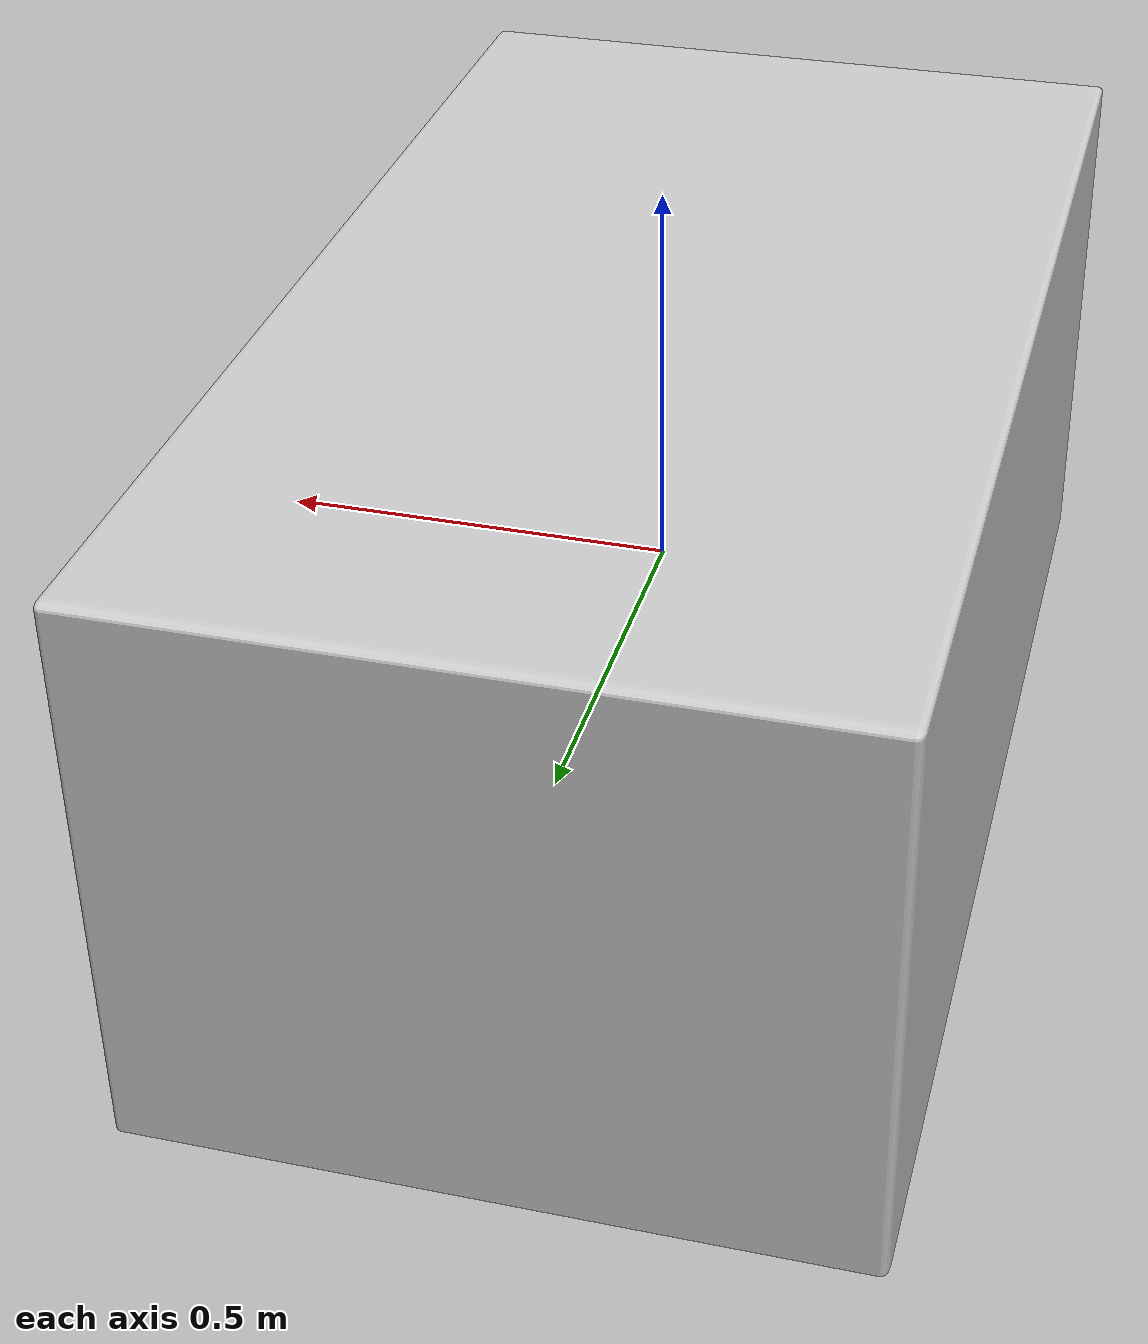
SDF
<?xml version="1.0"?>
<sdf version="1.5">
  <model name="Table_1_model">
<static>
true
</static>
    <link name="Table_1_link">
      <inertial>
        <mass>0.390</mass>
        <inertia>
          <ixx>0.00058</ixx>
          <ixy>0</ixy>
          <ixz>0</ixz>
          <iyy>0.00058</iyy>
          <iyz>0</iyz>
          <izz>0.00019</izz>
        </inertia>
      </inertial>
      <collision name="Table_1_collision">
        <geometry>
          <mesh>
            <uri>model://table_1/meshes/Table_1.dae</uri>
          </mesh>
        </geometry>
        <surface>
          <friction>
            <ode>
              <mu>1.0</mu>
              <mu2>1.0</mu2>
            </ode>
          </friction>
          <contact>
            <ode>
              <kp>10000000.0</kp>
              <kd>1.0</kd>
              <min_depth>0.001</min_depth>
              <max_vel>0.1</max_vel>
            </ode>
          </contact>
        </surface>
      </collision>
      <visual name="Table_1_visual">
        <geometry>
          <mesh>
            <uri>model://table_1/meshes/Table_1.dae</uri>
          </mesh>
        </geometry>
      </visual>
    </link>
  </model>
</sdf>
